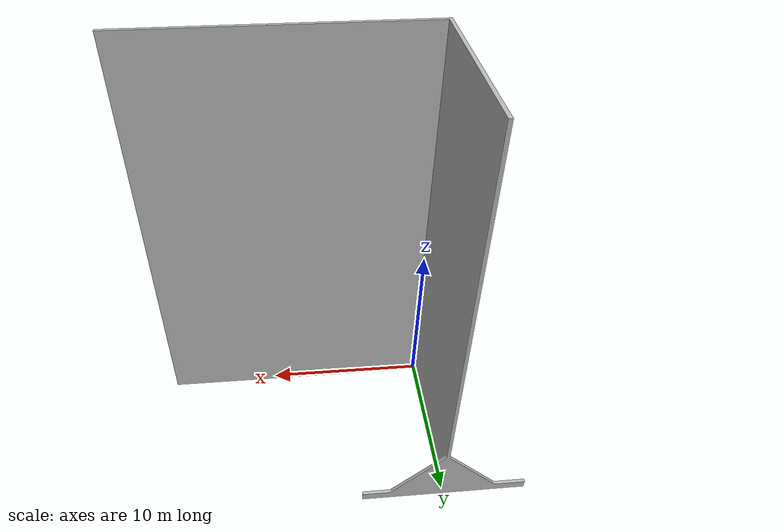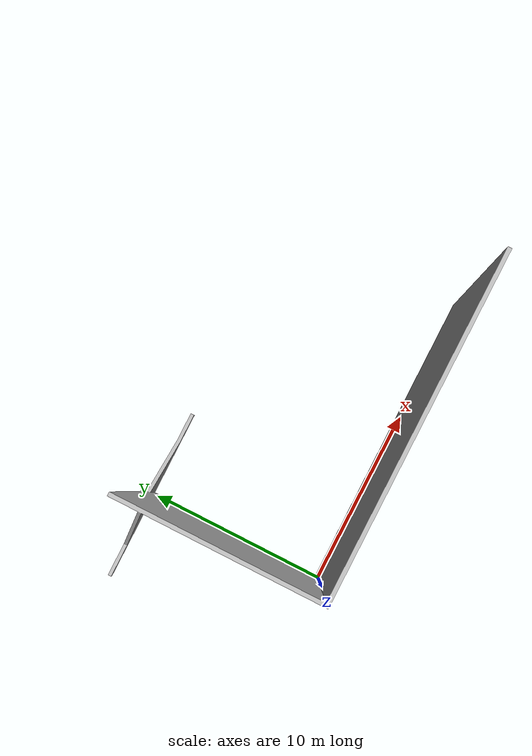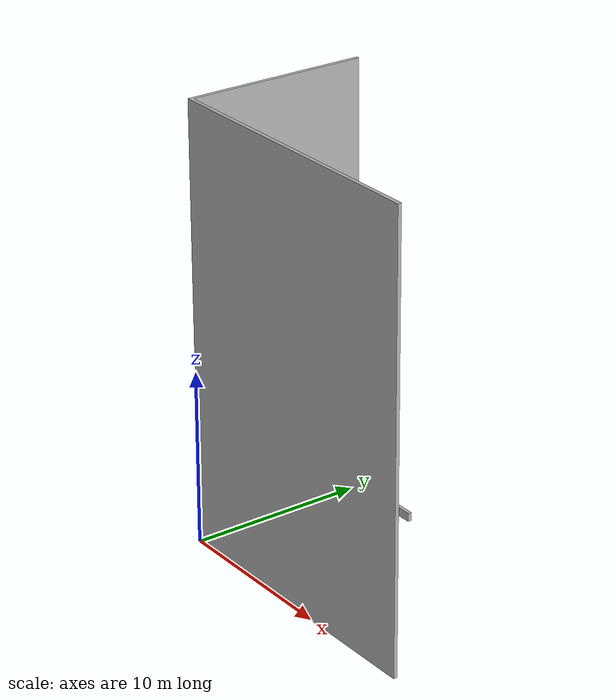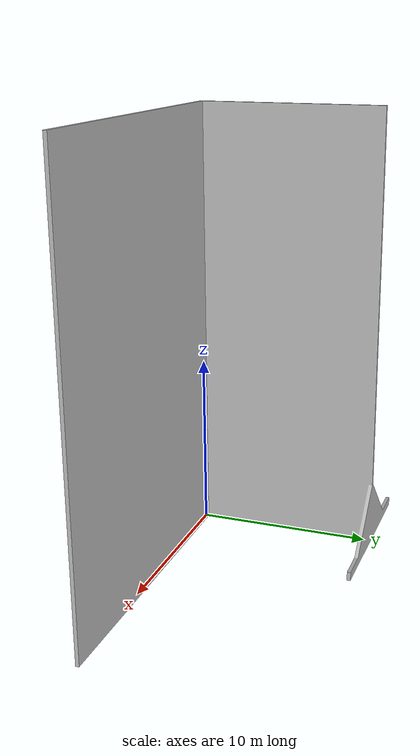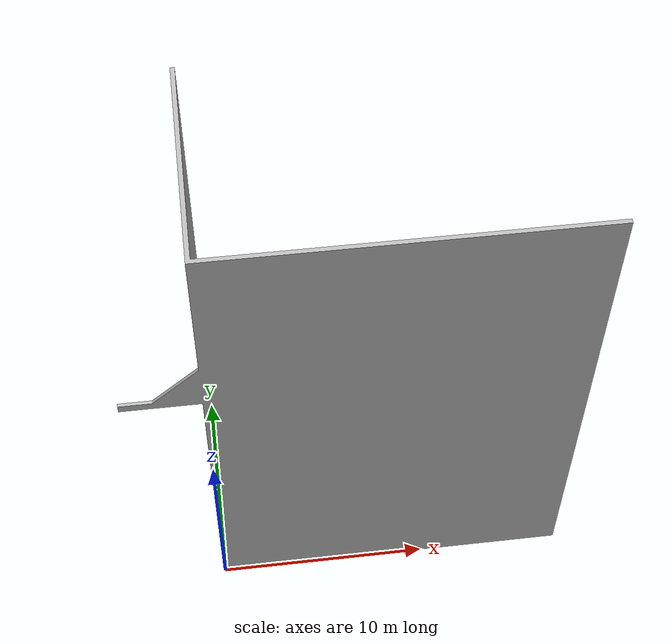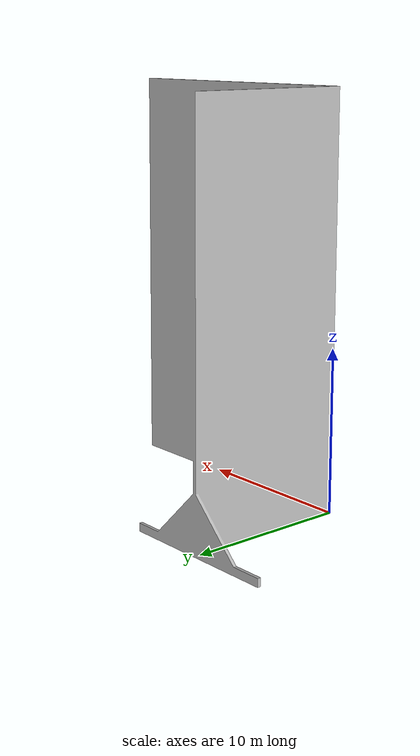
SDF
<?xml version='1.0'?>
<sdf version="1.4">
  <model name="corner_wall_2">
    <pose>0 0 0 0 0 0</pose>
      <inertial>
        <pose frame=''>0 0 0 0 -0 0</pose>
        <mass>100</mass>
      </inertial>
    <static>false</static>
    <link name="link">

      <collision name="collision_wall">
        <geometry>
          <mesh>
          <uri>model://corner_wall_2/mashes/corner_wall_2.dae</uri>
	   <scale>1 1 1</scale>
          </mesh>
        </geometry>
      </collision>
      <visual name="visual">
        <geometry>
          <mesh>
          <uri>model://corner_wall_2/mashes/corner_wall_2.dae</uri>
	   <scale>1 1 1</scale>
          </mesh>
        </geometry>
      </visual>
    </link>
  </model>
</sdf>
